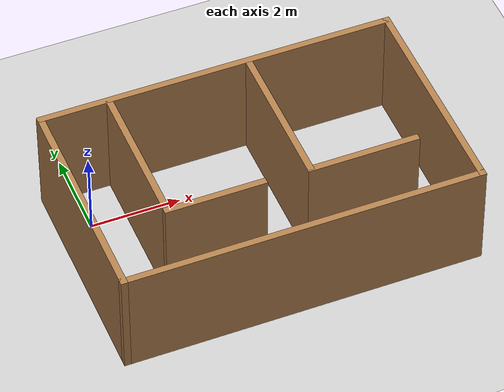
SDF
<sdf version="1.6">
 <world name="default">
  <light name="sun" type="directional">
   <pose>0 0 10 0 -0 0</pose>
   <diffuse>0.8 0.8 0.8 1</diffuse>
   <specular>0.2 0.2 0.2 1</specular>
   <attenuation>
    <range>1000</range>
    <constant>0.9</constant>
    <linear>0.01</linear>
    <quadratic>0.001</quadratic>
   </attenuation>
   <direction>-0.5 0.1 -0.9</direction>
  </light>
  <model name="ground_plane">
   <static>1</static>
   <link name="link">
    <collision name="collision">
     <geometry><plane><normal>0 0 1</normal><size>100 100</size></plane></geometry>
     <surface><friction><ode><mu>100</mu><mu2>50</mu2></ode></friction></surface>
    </collision>
    <visual name="visual">
     <cast_shadows>0</cast_shadows>
     <geometry><plane><normal>0 0 1</normal><size>100 100</size></plane></geometry>
     <material>
      <script><uri>file://media/materials/scripts/gazebo.material</uri><name>Gazebo/Grey</name></script>
     </material>
    </visual>
   </link>
  </model>
  <gravity>0 0 -9.8</gravity>
  <magnetic_field>6e-06 2.3e-05 -4.2e-05</magnetic_field>
  <atmosphere type="adiabatic"/>
  <physics name="default_physics" default="0" type="ode">
   <max_step_size>0.001</max_step_size>
   <real_time_factor>1</real_time_factor>
   <real_time_update_rate>1000</real_time_update_rate>
  </physics>
  <scene><ambient>0.4 0.4 0.4 1</ambient><background>0.7 0.7 0.7 1</background><shadows>1</shadows></scene>
  <audio><device>default</device></audio>
  <spherical_coordinates>
   <surface_model>EARTH_WGS84</surface_model>
   <latitude_deg>0</latitude_deg>
   <longitude_deg>0</longitude_deg>
   <elevation>0</elevation>
   <heading_deg>0</heading_deg>
  </spherical_coordinates>
  <model name="wall">
   <pose>3.27881 -1.37852 0 0 -0 0</pose>
   <link name="Wall_1">
    <collision name="Wall_1_Collision">
     <geometry><box><size>8 0.15 2.5</size></box></geometry>
     <pose>0 0 1.25 0 -0 0</pose>
    </collision>
    <visual name="Wall_1_Visual">
     <pose>0 0 1.25 0 -0 0</pose>
     <geometry><box><size>8 0.15 2.5</size></box></geometry>
     <material>
      <script><uri>file://media/materials/scripts/gazebo.material</uri><name>Gazebo/Wood</name></script>
      <ambient>1 1 1 1</ambient>
     </material>
     <meta><layer>0</layer></meta>
    </visual>
    <pose>-0 2.425 0 0 -0 0</pose>
   </link>
   <link name="Wall_10">
    <collision name="Wall_10_Collision">
     <geometry><box><size>3.5 0.15 2.5</size></box></geometry>
     <pose>0 0 1.25 0 -0 0</pose>
    </collision>
    <visual name="Wall_10_Visual">
     <pose>0 0 1.25 0 -0 0</pose>
     <geometry><box><size>3.5 0.15 2.5</size></box></geometry>
     <material>
      <script><uri>file://media/materials/scripts/gazebo.material</uri><name>Gazebo/Wood</name></script>
      <ambient>1 1 1 1</ambient>
     </material>
     <meta><layer>0</layer></meta>
    </visual>
    <pose>0.719167 0.679906 0 0 -0 -1.5708</pose>
   </link>
   <link name="Wall_11">
    <collision name="Wall_11_Collision">
     <geometry><box><size>2.5 0.15 2.5</size></box></geometry>
     <pose>0 0 1.25 0 -0 0</pose>
    </collision>
    <visual name="Wall_11_Visual">
     <pose>0 0 1.25 0 -0 0</pose>
     <geometry><box><size>2.5 0.15 2.5</size></box></geometry>
     <material>
      <script><uri>file://media/materials/scripts/gazebo.material</uri><name>Gazebo/Wood</name></script>
      <ambient>1 1 1 1</ambient>
     </material>
     <meta><layer>0</layer></meta>
    </visual>
    <pose>1.89417 -0.995094 0 0 -0 0</pose>
   </link>
   <link name="Wall_3">
    <collision name="Wall_3_Collision">
     <geometry><box><size>5 0.15 2.5</size></box></geometry>
     <pose>0 0 1.25 0 -0 0</pose>
    </collision>
    <visual name="Wall_3_Visual">
     <pose>0 0 1.25 0 -0 0</pose>
     <geometry><box><size>5 0.15 2.5</size></box></geometry>
     <material>
      <script><uri>file://media/materials/scripts/gazebo.material</uri><name>Gazebo/Wood</name></script>
      <ambient>1 1 1 1</ambient>
     </material>
     <meta><layer>0</layer></meta>
    </visual>
    <pose>3.925 0 0 0 -0 -1.5708</pose>
   </link>
   <link name="Wall_4">
    <collision name="Wall_4_Collision">
     <geometry><box><size>8 0.15 2.5</size></box></geometry>
     <pose>0 0 1.25 0 -0 0</pose>
    </collision>
    <visual name="Wall_4_Visual">
     <pose>0 0 1.25 0 -0 0</pose>
     <geometry><box><size>8 0.15 2.5</size></box></geometry>
     <material>
      <script><uri>file://media/materials/scripts/gazebo.material</uri><name>Gazebo/Wood</name></script>
      <ambient>1 1 1 1</ambient>
     </material>
     <meta><layer>0</layer></meta>
    </visual>
    <pose>-0 -2.425 0 0 -0 3.14159</pose>
   </link>
   <link name="Wall_5">
    <collision name="Wall_5_Collision">
     <geometry><box><size>5 0.15 2.5</size></box></geometry>
     <pose>0 0 1.25 0 -0 0</pose>
    </collision>
    <visual name="Wall_5_Visual">
     <pose>0 0 1.25 0 -0 0</pose>
     <geometry><box><size>5 0.15 2.5</size></box></geometry>
     <material>
      <script><uri>file://media/materials/scripts/gazebo.material</uri><name>Gazebo/Wood</name></script>
      <ambient>1 1 1 1</ambient>
     </material>
     <meta><layer>0</layer></meta>
    </visual>
    <pose>-3.925 0 0 0 -0 1.5708</pose>
   </link>
   <link name="Wall_7">
    <collision name="Wall_7_Collision">
     <geometry><box><size>3.5 0.15 2.5</size></box></geometry>
     <pose>0 0 1.25 0 -0 0</pose>
    </collision>
    <visual name="Wall_7_Visual">
     <pose>0 0 1.25 0 -0 0</pose>
     <geometry><box><size>3.5 0.15 2.5</size></box></geometry>
     <material>
      <script><uri>file://media/materials/scripts/gazebo.material</uri><name>Gazebo/Wood</name></script>
      <ambient>1 1 1 1</ambient>
     </material>
     <meta><layer>0</layer></meta>
    </visual>
    <pose>-2.41718 0.719357 0 0 -0 -1.5708</pose>
   </link>
   <link name="Wall_8">
    <collision name="Wall_8_Collision">
     <geometry><box><size>2.25 0.15 2.5</size></box></geometry>
     <pose>0 0 1.25 0 -0 0</pose>
    </collision>
    <visual name="Wall_8_Visual">
     <pose>0 0 1.25 0 -0 0</pose>
     <geometry><box><size>2.25 0.15 2.5</size></box></geometry>
     <material>
      <script><uri>file://media/materials/scripts/gazebo.material</uri><name>Gazebo/Wood</name></script>
      <ambient>1 1 1 1</ambient>
     </material>
     <meta><layer>0</layer></meta>
    </visual>
    <pose>-1.36719 -0.955643 0 0 -0 0</pose>
   </link>
   <static>1</static>
  </model>
 </world>
</sdf>
